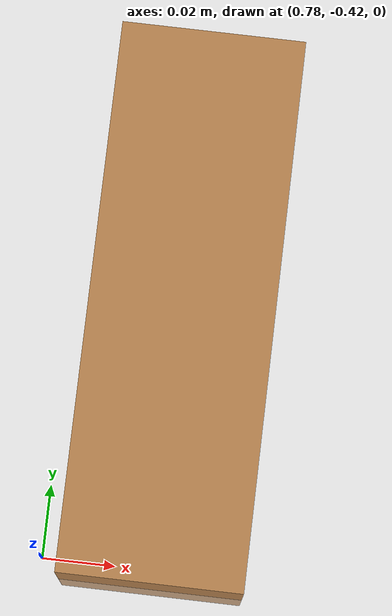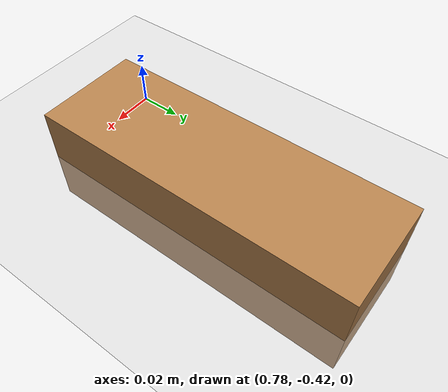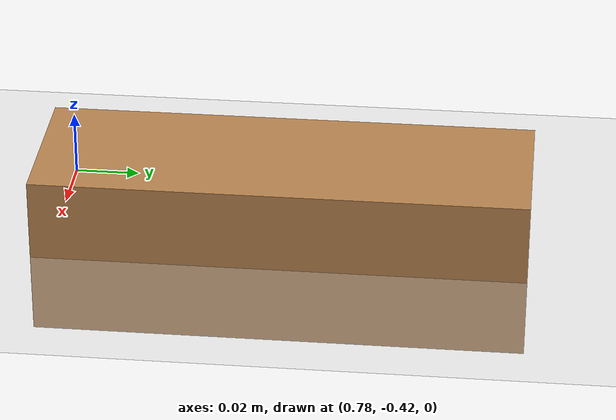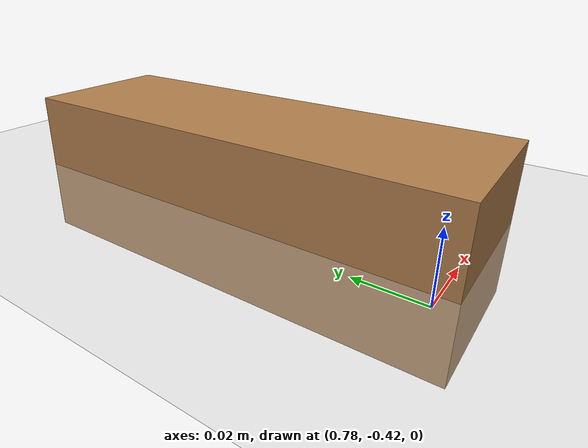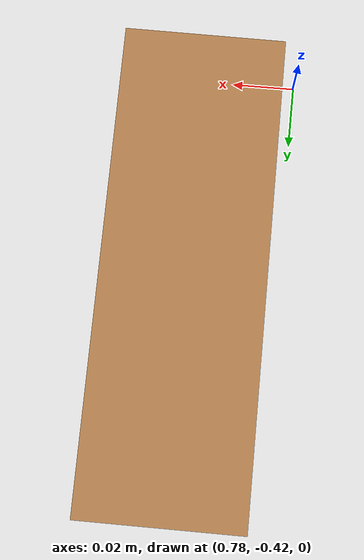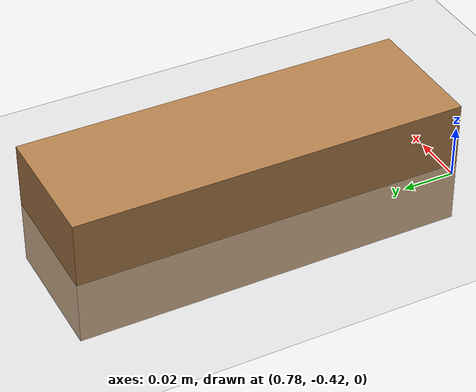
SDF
<?xml version="1.0" ?>
<sdf version="1.5">
  <world name="default">
    <!-- A global light source -->
    <include>
      <uri>model://sun</uri>
    </include>
    <!-- A ground plane -->
    <include>
      <uri>model://ground_plane</uri>
    </include>
    <physics type = "ode">
        <max_step_size>0.001</max_step_size>
        <real_time_factor>1</real_time_factor>
        <real_time_update_rate>1000</real_time_update_rate>
    </physics>

    <!-- A parallelepiped -->
    <model name="cube_05_15_05_01">
      <pose>0.81 -0.35 0.0 0 0 0</pose>
      <link name="link">
        <pose>0 0 0 0 0 0</pose>
        <inertial>
          <mass>0.01</mass>
            <inertia> <!-- inertias are tricky to compute -->
              <!-- http://gazebosim.org/tutorials?tut=inertia&cat=build_robot -->
              <ixx>0.00002075</ixx>   <!-- for a box: ixx = 0.083 * mass * (y*y + z*z) -->
              <ixy>0.0</ixy>         <!-- for a box: ixy = 0 -->
              <ixz>0.0</ixz>         <!-- for a box: ixz = 0 -->
              <iyy>4.15e-6</iyy>       <!-- for a box: iyy = 0.083 * mass * (x*x + z*z) -->
              <iyz>0.0</iyz>         <!-- for a box: iyz = 0 -->
              <izz>0.00002075</izz>   <!-- for a box: izz = 0.083 * mass * (x*x + y*y) -->
            </inertia>
        </inertial>

        <collision name="collision">
          <geometry>
            <box>
              <size>0.05 0.15 0.05</size>
            </box>
          </geometry>
          <surface>
            <contact>
              <poissons_ratio>0.347</poissons_ratio>
              <elastic_modulus>8.8e+09</elastic_modulus>
              <ode>
                <kp>10000</kp>
                <kd>0.01</kd>
                <max_vel>0.1</max_vel>
              </ode>
            </contact>
            <friction>
              <torsional>
                <coefficient>10.0</coefficient>
              </torsional>
            </friction>
          </surface>

          <bounce>
            <restitution_coefficient>0</restitution_coefficient>
            <threshold>1e+06</threshold>
          </bounce>
        </collision>

        <visual name="visual">
          <geometry>
            <box>
              <size>0.05 0.15 0.05</size>
            </box>
          </geometry>
          <material>
            <script>
              <uri>file://media/materials/scripts/gazebo.material</uri>
              <name>Gazebo/Wood</name>
            </script>
          </material>
        </visual>
      </link>
    </model>

  </world>
</sdf>
